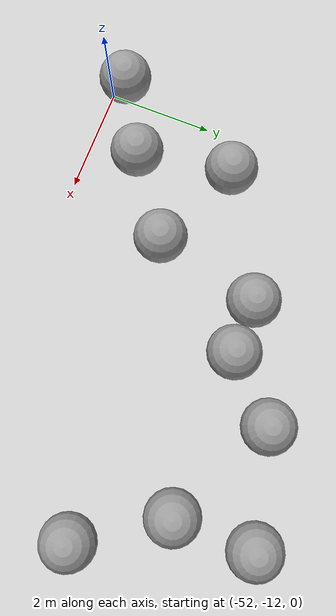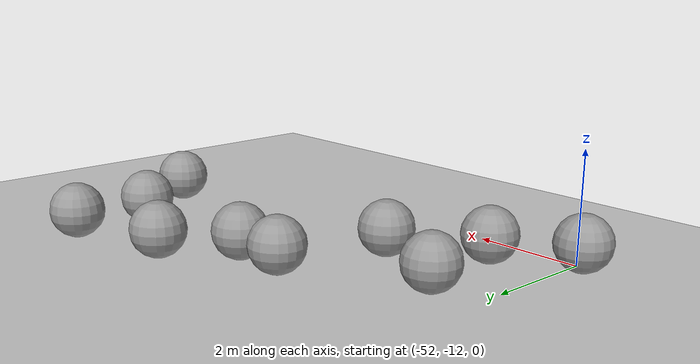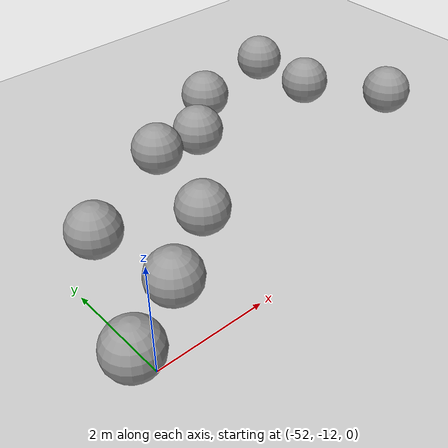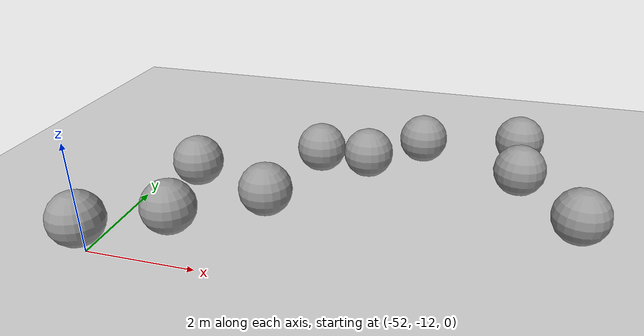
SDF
<sdf version="1.6">
 <world name="default">
  <model name="ground_plane">
   <static>1</static>
   <link name="link">
    <collision name="collision">
     <geometry><plane><normal>0 0 1</normal><size>100 100</size></plane></geometry>
     <surface><friction><ode><mu>100</mu><mu2>50</mu2></ode></friction></surface>
    </collision>
    <visual name="visual">
     <cast_shadows>0</cast_shadows>
     <geometry><plane><normal>0 0 1</normal><size>100 100</size></plane></geometry>
     <material>
      <script><uri>file://media/materials/scripts/gazebo.material</uri><name>Gazebo/Grey</name></script>
     </material>
    </visual>
   </link>
  </model>
  <model name="unit_sphere_0_clone_62">
   <pose>-51.2221 -9.25132 0.5 0 -0 0</pose>
   <link name="link">
    <inertial>
     <mass>1</mass>
     <inertia><ixx>0.1</ixx><ixy>0</ixy><ixz>0</ixz><iyy>0.1</iyy><iyz>0</iyz><izz>0.1</izz></inertia>
    </inertial>
    <collision name="collision"><geometry><sphere><radius>0.5</radius></sphere></geometry></collision>
    <visual name="visual">
     <geometry><sphere><radius>0.5</radius></sphere></geometry>
     <material>
      <script><name>Gazebo/Grey</name><uri>file://media/materials/scripts/gazebo.material</uri></script>
     </material>
    </visual>
   </link>
  </model>
  <model name="unit_sphere_0_clone_88">
   <pose>-47 -7 0.5 0 -0 0</pose>
   <link name="link">
    <inertial>
     <mass>1</mass>
     <inertia><ixx>0.1</ixx><ixy>0</ixy><ixz>0</ixz><iyy>0.1</iyy><iyz>0</iyz><izz>0.1</izz></inertia>
    </inertial>
    <collision name="collision"><geometry><sphere><radius>0.5</radius></sphere></geometry></collision>
    <visual name="visual">
     <geometry><sphere><radius>0.5</radius></sphere></geometry>
     <material>
      <script><name>Gazebo/Grey</name><uri>file://media/materials/scripts/gazebo.material</uri></script>
     </material>
    </visual>
   </link>
  </model>
  <model name="unit_sphere_1_clone_83">
   <pose>-52.2258 -11.8071 0.5 0 -0 0</pose>
   <link name="link">
    <inertial>
     <mass>1</mass>
     <inertia><ixx>0.1</ixx><ixy>0</ixy><ixz>0</ixz><iyy>0.1</iyy><iyz>0</iyz><izz>0.1</izz></inertia>
    </inertial>
    <collision name="collision"><geometry><sphere><radius>0.5</radius></sphere></geometry></collision>
    <visual name="visual">
     <geometry><sphere><radius>0.5</radius></sphere></geometry>
     <material>
      <script><name>Gazebo/Grey</name><uri>file://media/materials/scripts/gazebo.material</uri></script>
     </material>
    </visual>
   </link>
  </model>
  <model name="unit_sphere_1_clone_84">
   <pose>-50.917 -11.0366 0.5 0 -0 0</pose>
   <link name="link">
    <inertial>
     <mass>1</mass>
     <inertia><ixx>0.1</ixx><ixy>0</ixy><ixz>0</ixz><iyy>0.1</iyy><iyz>0</iyz><izz>0.1</izz></inertia>
    </inertial>
    <collision name="collision"><geometry><sphere><radius>0.5</radius></sphere></geometry></collision>
    <visual name="visual">
     <geometry><sphere><radius>0.5</radius></sphere></geometry>
     <material>
      <script><name>Gazebo/Grey</name><uri>file://media/materials/scripts/gazebo.material</uri></script>
     </material>
    </visual>
   </link>
  </model>
  <model name="unit_sphere_1_clone_85">
   <pose>-49.5056 -10 0.5 0 -0 0</pose>
   <link name="link">
    <inertial>
     <mass>1</mass>
     <inertia><ixx>0.1</ixx><ixy>0</ixy><ixz>0</ixz><iyy>0.1</iyy><iyz>0</iyz><izz>0.1</izz></inertia>
    </inertial>
    <collision name="collision"><geometry><sphere><radius>0.5</radius></sphere></geometry></collision>
    <visual name="visual">
     <geometry><sphere><radius>0.5</radius></sphere></geometry>
     <material>
      <script><name>Gazebo/Grey</name><uri>file://media/materials/scripts/gazebo.material</uri></script>
     </material>
    </visual>
   </link>
  </model>
  <model name="unit_sphere_1_clone_86">
   <pose>-48 -8 0.5 0 -0 0</pose>
   <link name="link">
    <inertial>
     <mass>1</mass>
     <inertia><ixx>0.1</ixx><ixy>0</ixy><ixz>0</ixz><iyy>0.1</iyy><iyz>0</iyz><izz>0.1</izz></inertia>
    </inertial>
    <collision name="collision"><geometry><sphere><radius>0.5</radius></sphere></geometry></collision>
    <visual name="visual">
     <geometry><sphere><radius>0.5</radius></sphere></geometry>
     <material>
      <script><name>Gazebo/Grey</name><uri>file://media/materials/scripts/gazebo.material</uri></script>
     </material>
    </visual>
   </link>
  </model>
  <model name="unit_sphere_1_clone_87">
   <pose>-49 -8 0.5 0 -0 0</pose>
   <link name="link">
    <inertial>
     <mass>1</mass>
     <inertia><ixx>0.1</ixx><ixy>0</ixy><ixz>0</ixz><iyy>0.1</iyy><iyz>0</iyz><izz>0.1</izz></inertia>
    </inertial>
    <collision name="collision"><geometry><sphere><radius>0.5</radius></sphere></geometry></collision>
    <visual name="visual">
     <geometry><sphere><radius>0.5</radius></sphere></geometry>
     <material>
      <script><name>Gazebo/Grey</name><uri>file://media/materials/scripts/gazebo.material</uri></script>
     </material>
    </visual>
   </link>
  </model>
  <model name="unit_sphere_1_clone_88">
   <pose>-45 -8 0.5 0 -0 0</pose>
   <link name="link">
    <inertial>
     <mass>1</mass>
     <inertia><ixx>0.1</ixx><ixy>0</ixy><ixz>0</ixz><iyy>0.1</iyy><iyz>0</iyz><izz>0.1</izz></inertia>
    </inertial>
    <collision name="collision"><geometry><sphere><radius>0.5</radius></sphere></geometry></collision>
    <visual name="visual">
     <geometry><sphere><radius>0.5</radius></sphere></geometry>
     <material>
      <script><name>Gazebo/Grey</name><uri>file://media/materials/scripts/gazebo.material</uri></script>
     </material>
    </visual>
   </link>
  </model>
  <model name="unit_sphere_1_clone_89">
   <pose>-45 -6.52624 0.5 0 -0 0</pose>
   <link name="link">
    <inertial>
     <mass>1</mass>
     <inertia><ixx>0.1</ixx><ixy>0</ixy><ixz>0</ixz><iyy>0.1</iyy><iyz>0</iyz><izz>0.1</izz></inertia>
    </inertial>
    <collision name="collision"><geometry><sphere><radius>0.5</radius></sphere></geometry></collision>
    <visual name="visual">
     <geometry><sphere><radius>0.5</radius></sphere></geometry>
     <material>
      <script><name>Gazebo/Grey</name><uri>file://media/materials/scripts/gazebo.material</uri></script>
     </material>
    </visual>
   </link>
  </model>
  <model name="unit_sphere_1_clone_90">
   <pose>-44 -9.48059 0.5 0 -0 0</pose>
   <link name="link">
    <inertial>
     <mass>1</mass>
     <inertia><ixx>0.1</ixx><ixy>0</ixy><ixz>0</ixz><iyy>0.1</iyy><iyz>0</iyz><izz>0.1</izz></inertia>
    </inertial>
    <collision name="collision"><geometry><sphere><radius>0.5</radius></sphere></geometry></collision>
    <visual name="visual">
     <geometry><sphere><radius>0.5</radius></sphere></geometry>
     <material>
      <script><name>Gazebo/Grey</name><uri>file://media/materials/scripts/gazebo.material</uri></script>
     </material>
    </visual>
   </link>
  </model>
 </world>
</sdf>
